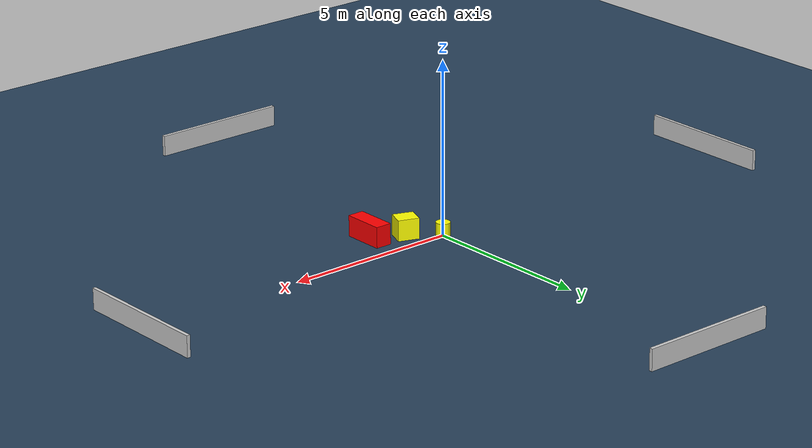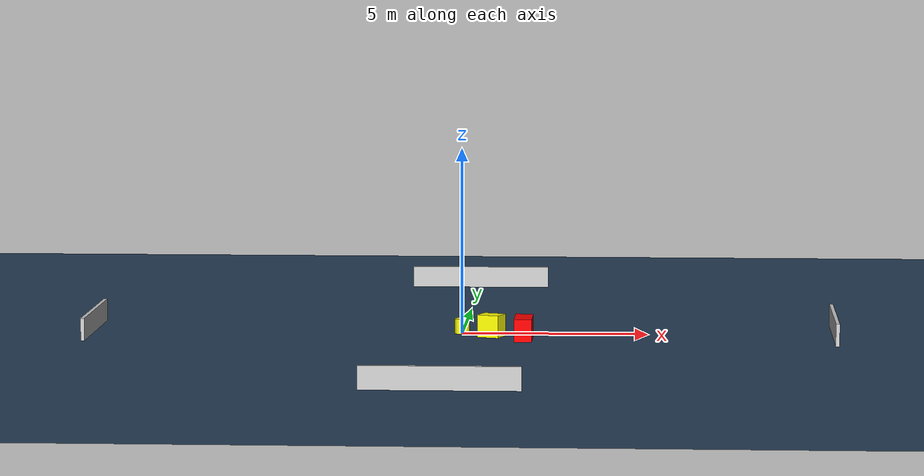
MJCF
<?xml version="1.0" ?>
<mujoco model="generated_environment">
  <option timestep="0.01" integrator="RK4" cone="elliptic"/>
  <default>
    <geom density="1"/>
  </default>
  <asset>
    <texture builtin="gradient" height="3072" name="skybox" rgb1="0.3 0.5 0.7" rgb2="0 0 0" type="skybox" width="512"/>
    <texture builtin="checker" height="300" name="groundplane" rgb1="0.2 0.3 0.4" rgb2="0.1 0.2 0.3" type="2d" width="300"/>
    <material name="groundplane" reflectance="0.2" texrepeat="5 5" texture="groundplane"/>
  </asset>
  <worldbody>
    <light dir="0 0 -1" directional="true" pos="0 0 1.5"/>
    <geom condim="3" friction="0.5 0.005 0.001" material="groundplane" name="floor" pos="0 0 0" size="0 0 0.05" type="plane"/>
    <body name="walls">
      <geom name="wall_1" condim="4" pos="-10.0 0.0 0.3" rgba="0.800000011920929 0.800000011920929 0.800000011920929 1.0" size="0.05 2.0 0.3" type="box"/>
      <geom name="wall_2" condim="4" pos="10.0 0.0 0.3" rgba="0.800000011920929 0.800000011920929 0.800000011920929 1.0" size="0.05 2.0 0.3" type="box"/>
      <geom name="wall_3" condim="4" pos="0.0 -10.0 0.3" rgba="0.800000011920929 0.800000011920929 0.800000011920929 1.0" size="2.0 0.05 0.3" type="box"/>
      <geom name="wall_4" condim="4" pos="0.0 10.0 0.3" rgba="0.800000011920929 0.800000011920929 0.800000011920929 1.0" size="2.0 0.05 0.3" type="box"/>
    </body>
    <body name="robot">
      <joint name="joint_x" type="slide" pos="0 0 0" axis="1 0 0"/>
      <joint name="joint_y" type="slide" pos="0 0 0" axis="0 1 0"/>
      <geom name="robot" type="cylinder" pos="0.0 0.0 0.2" size="0.2 0.2 0.0" mass="5.0" friction="1.0 0.005 0.0001" condim="4" rgba="1.0 1.0 0.0 1.0"/>
    </body>
    <body name="obstacle_1_movable">
      <geom name="obstacle_1_movable" condim="4" pos="0.819939968416269 -0.5963860650876147 0.3" euler="0 0 339.61731423005745" friction="0.0 0.005 0.001" rgba="1.0 1.0 0.0 1.0" size="0.2992315519687664 0.25472314659850825 0.3" type="box" mass="0.1"/>
      <joint type="free"/>
    </body>
    <body name="obstacle_2_static">
      <geom name="obstacle_2_static" condim="4" pos="1.6996001122872786 -1.0539218538720727 0.3" euler="0 0 269.74808876761455" friction="0.0 0.005 0.001" rgba="1.0 0.0 0.0 1.0" size="0.5934232021106574 0.23664403450429222 0.3" type="box"/>
    </body>
  </worldbody>
  <actuator>
    <motor name="actuator_x" joint="joint_x" gear="1" ctrlrange="-1 1"/>
    <motor name="actuator_y" joint="joint_y" gear="1" ctrlrange="-1 1"/>
  </actuator>
</mujoco>
